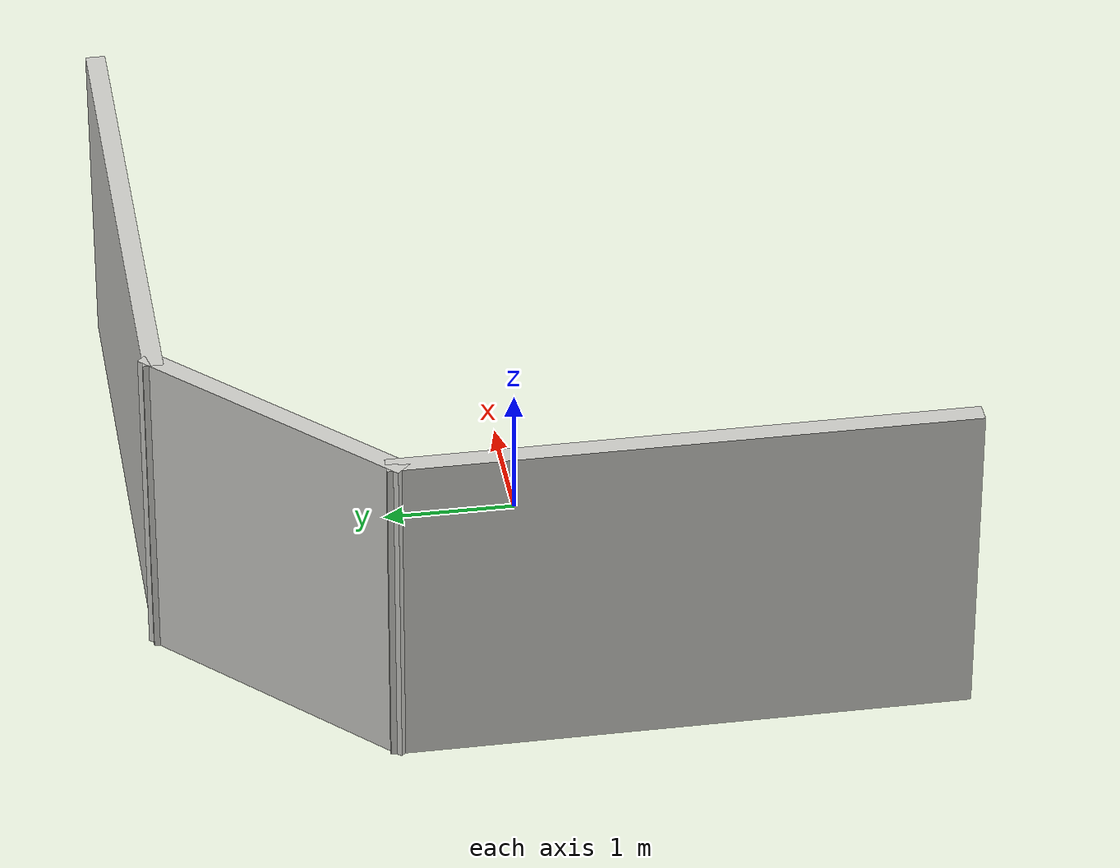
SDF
<?xml version='1.0'?>
<sdf version='1.7'>
  <model name='kitchen_no_sink_walls_pics'>
    <link name='Wall_0'>
      <pose>-2.82197 -0.790533 0 0 -0 1.5708</pose>
      <self_collide>0</self_collide>
      <enable_wind>0</enable_wind>
      <kinematic>0</kinematic>
      <visual name='Wall_0_Visual'>
        <pose>0 0 1.25 0 -0 0</pose>
        <geometry>
          <box>
            <size>4.27 0.15 2.5</size>
          </box>
        </geometry>
        <material>
          <script>
            <uri>file://media/materials/scripts/gazebo.material</uri>
            <name>Gazebo/CeilingTiled</name>
          </script>
          <ambient>1 1 1 1</ambient>
          <shader type='pixel'/>
        </material>
        <meta>
          <layer>0</layer>
        </meta>
        <transparency>0</transparency>
        <cast_shadows>1</cast_shadows>
      </visual>
      <collision name='Wall_0_Collision'>
        <laser_retro>0</laser_retro>
        <max_contacts>10</max_contacts>
        <pose>0 0 1.25 0 -0 0</pose>
        <geometry>
          <box>
            <size>4.27 0.15 2.5</size>
          </box>
        </geometry>
        <surface>
          <friction>
            <ode>
              <mu>1</mu>
              <mu2>1</mu2>
              <fdir1>0 0 0</fdir1>
              <slip1>0</slip1>
              <slip2>0</slip2>
            </ode>
            <torsional>
              <coefficient>1</coefficient>
              <patch_radius>0</patch_radius>
              <surface_radius>0</surface_radius>
              <use_patch_radius>1</use_patch_radius>
              <ode>
                <slip>0</slip>
              </ode>
            </torsional>
          </friction>
          <bounce>
            <restitution_coefficient>0</restitution_coefficient>
            <threshold>1e+06</threshold>
          </bounce>
          <contact>
            <collide_without_contact>0</collide_without_contact>
            <collide_without_contact_bitmask>1</collide_without_contact_bitmask>
            <collide_bitmask>1</collide_bitmask>
            <ode>
              <soft_cfm>0</soft_cfm>
              <soft_erp>0.2</soft_erp>
              <kp>1e+13</kp>
              <kd>1</kd>
              <max_vel>0.01</max_vel>
              <min_depth>0</min_depth>
            </ode>
            <bullet>
              <split_impulse>1</split_impulse>
              <split_impulse_penetration_threshold>-0.01</split_impulse_penetration_threshold>
              <soft_cfm>0</soft_cfm>
              <soft_erp>0.2</soft_erp>
              <kp>1e+13</kp>
              <kd>1</kd>
            </bullet>
          </contact>
        </surface>
      </collision>
    </link>
    <link name='Wall_11'>
      <pose>-2.04447 2.04447 0 0 -0 0.783788</pose>
      <self_collide>0</self_collide>
      <enable_wind>0</enable_wind>
      <kinematic>0</kinematic>
      <visual name='Wall_11_Visual'>
        <pose>0 0 1.25 0 -0 0</pose>
        <geometry>
          <box>
            <size>2.34557 0.15 2.5</size>
          </box>
        </geometry>
        <material>
          <script>
            <uri>file://media/materials/scripts/gazebo.material</uri>
            <name>Gazebo/CeilingTiled</name>
          </script>
          <ambient>1 1 1 1</ambient>
          <shader type='pixel'/>
        </material>
        <meta>
          <layer>0</layer>
        </meta>
        <transparency>0</transparency>
        <cast_shadows>1</cast_shadows>
      </visual>
      <collision name='Wall_11_Collision'>
        <laser_retro>0</laser_retro>
        <max_contacts>10</max_contacts>
        <pose>0 0 1.25 0 -0 0</pose>
        <geometry>
          <box>
            <size>2.34557 0.15 2.5</size>
          </box>
        </geometry>
        <surface>
          <friction>
            <ode>
              <mu>1</mu>
              <mu2>1</mu2>
              <fdir1>0 0 0</fdir1>
              <slip1>0</slip1>
              <slip2>0</slip2>
            </ode>
            <torsional>
              <coefficient>1</coefficient>
              <patch_radius>0</patch_radius>
              <surface_radius>0</surface_radius>
              <use_patch_radius>1</use_patch_radius>
              <ode>
                <slip>0</slip>
              </ode>
            </torsional>
          </friction>
          <bounce>
            <restitution_coefficient>0</restitution_coefficient>
            <threshold>1e+06</threshold>
          </bounce>
          <contact>
            <collide_without_contact>0</collide_without_contact>
            <collide_without_contact_bitmask>1</collide_without_contact_bitmask>
            <collide_bitmask>1</collide_bitmask>
            <ode>
              <soft_cfm>0</soft_cfm>
              <soft_erp>0.2</soft_erp>
              <kp>1e+13</kp>
              <kd>1</kd>
              <max_vel>0.01</max_vel>
              <min_depth>0</min_depth>
            </ode>
            <bullet>
              <split_impulse>1</split_impulse>
              <split_impulse_penetration_threshold>-0.01</split_impulse_penetration_threshold>
              <soft_cfm>0</soft_cfm>
              <soft_erp>0.2</soft_erp>
              <kp>1e+13</kp>
              <kd>1</kd>
            </bullet>
          </contact>
        </surface>
      </collision>
    </link>
    <link name='Wall_9'>
      <pose>0.793033 2.81947 0 0 -0 3.14159</pose>
      <self_collide>0</self_collide>
      <enable_wind>0</enable_wind>
      <kinematic>0</kinematic>
      <visual name='Wall_9_Visual'>
        <pose>0 0 1.25 0 -0 0</pose>
        <geometry>
          <box>
            <size>4.27 0.15 2.5</size>
          </box>
        </geometry>
        <material>
          <script>
            <uri>file://media/materials/scripts/gazebo.material</uri>
            <name>Gazebo/CeilingTiled</name>
          </script>
          <ambient>1 1 1 1</ambient>
          <shader type='pixel'/>
        </material>
        <meta>
          <layer>0</layer>
        </meta>
        <transparency>0</transparency>
        <cast_shadows>1</cast_shadows>
      </visual>
      <collision name='Wall_9_Collision'>
        <laser_retro>0</laser_retro>
        <max_contacts>10</max_contacts>
        <pose>0 0 1.25 0 -0 0</pose>
        <geometry>
          <box>
            <size>4.27 0.15 2.5</size>
          </box>
        </geometry>
        <surface>
          <friction>
            <ode>
              <mu>1</mu>
              <mu2>1</mu2>
              <fdir1>0 0 0</fdir1>
              <slip1>0</slip1>
              <slip2>0</slip2>
            </ode>
            <torsional>
              <coefficient>1</coefficient>
              <patch_radius>0</patch_radius>
              <surface_radius>0</surface_radius>
              <use_patch_radius>1</use_patch_radius>
              <ode>
                <slip>0</slip>
              </ode>
            </torsional>
          </friction>
          <bounce>
            <restitution_coefficient>0</restitution_coefficient>
            <threshold>1e+06</threshold>
          </bounce>
          <contact>
            <collide_without_contact>0</collide_without_contact>
            <collide_without_contact_bitmask>1</collide_without_contact_bitmask>
            <collide_bitmask>1</collide_bitmask>
            <ode>
              <soft_cfm>0</soft_cfm>
              <soft_erp>0.2</soft_erp>
              <kp>1e+13</kp>
              <kd>1</kd>
              <max_vel>0.01</max_vel>
              <min_depth>0</min_depth>
            </ode>
            <bullet>
              <split_impulse>1</split_impulse>
              <split_impulse_penetration_threshold>-0.01</split_impulse_penetration_threshold>
              <soft_cfm>0</soft_cfm>
              <soft_erp>0.2</soft_erp>
              <kp>1e+13</kp>
              <kd>1</kd>
            </bullet>
          </contact>
        </surface>
      </collision>
    </link>
    <static>1</static>
    <allow_auto_disable>1</allow_auto_disable>
  </model>
</sdf>
